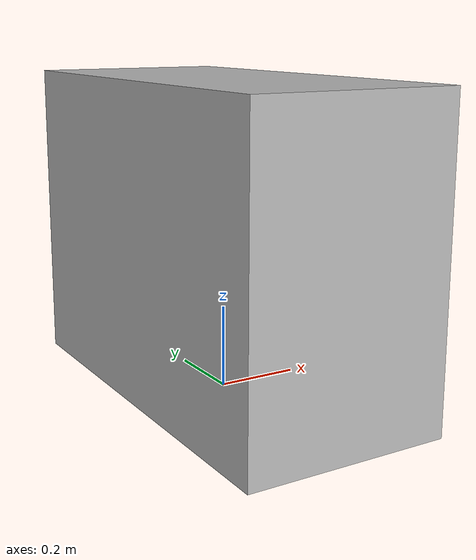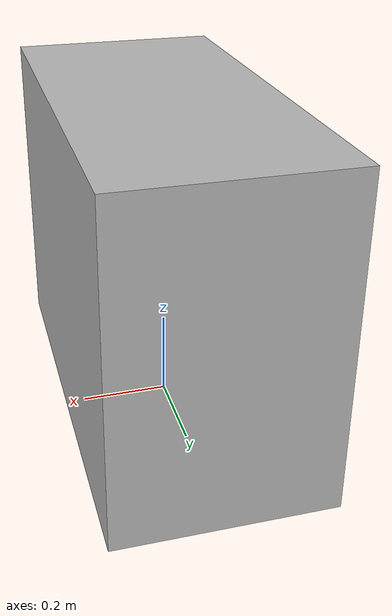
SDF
<?xml version="1.0"?>
<sdf version="1.6">
  <model name="rwc2019/bedroom_chest">
    <link name="1_link">
      <collision name="1_col">
        <geometry>
          <box>
            <size>0.49 1.01 0.75</size>
          </box>
        </geometry>
      </collision>
      <visual name="1_vis">
        <geometry>
          <box>
            <size>0.49 1.01 0.75</size>
          </box>
        </geometry>
      </visual>
      <pose>0.0 0.0 0.375 0 0 0</pose>
    </link>
    <link name="on_top_of">
      <virtual_volume name="on_top_of_vv">
        <geometry>
          <box>
            <size>0.45 0.95 0.25</size>
          </box>
        </geometry>
        <pose>0.02 0.0 0.895 0 0 0</pose>
      </virtual_volume>
    </link>
    <link name="in_front_of">
      <virtual_volume name="in_front_of_vv">
        <geometry>
          <box>
            <size>0.2 0.5 0.01</size>
          </box>
        </geometry>
        <pose>0.745 0.0 0.005 0 0 0</pose>
      </virtual_volume>
    </link>
    <static>true</static>
  </model>
</sdf>
